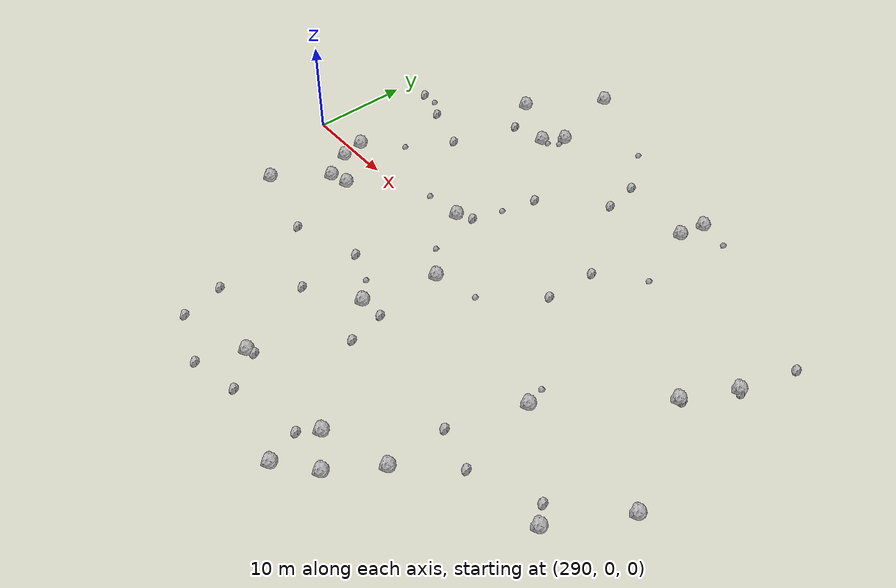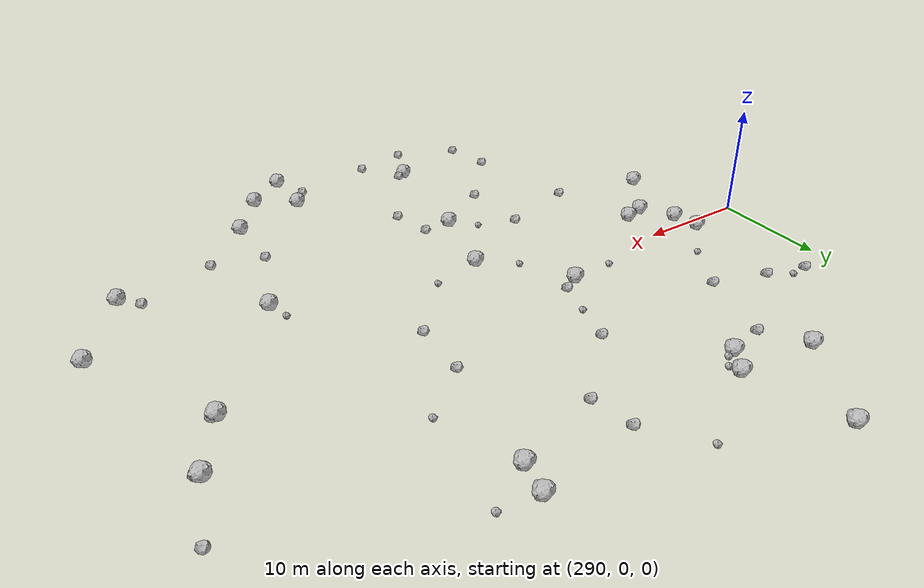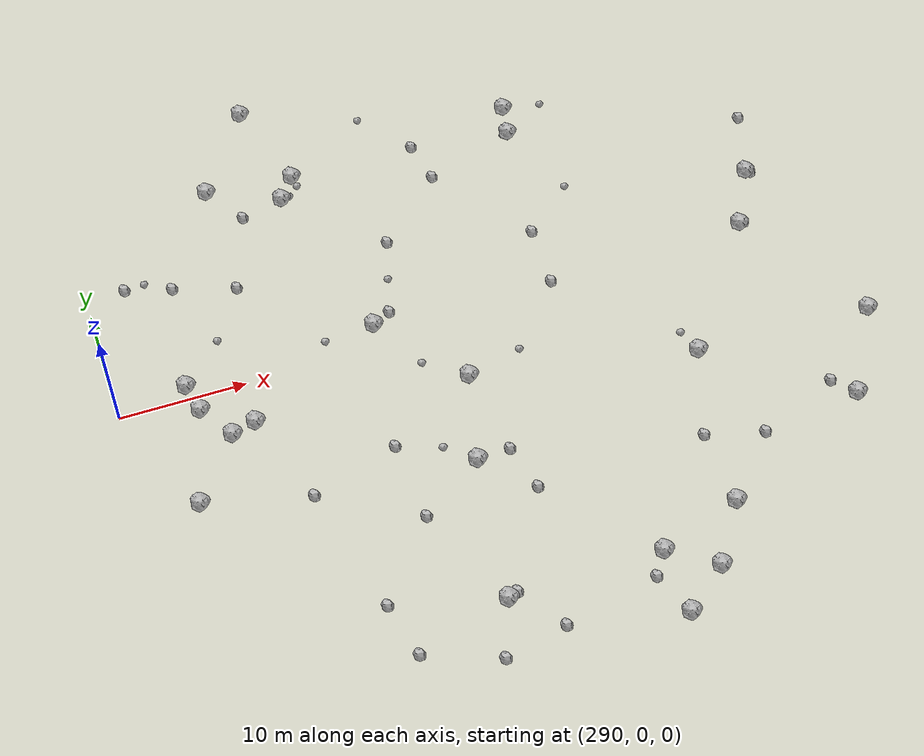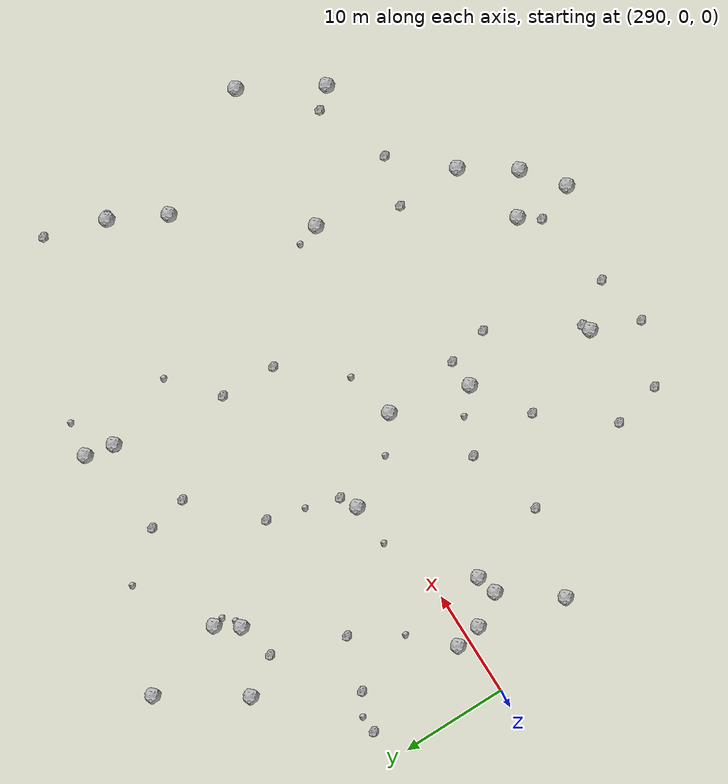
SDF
<sdf version="1.6">
 <world name="default">
  <include><uri>model://sun</uri></include>
  <model name="rock1_8_3">
   <include><uri>model://rock1</uri><pose>344.824893461898 7.069198201422985 0.5 0 0 0</pose></include>
  </model>
  <model name="rock1_8_4">
   <include><uri>model://rock1</uri><pose>325.12399207974437 -24.12594606761884 0.5 0 0 0</pose></include>
  </model>
  <model name="rock1_8_5">
   <include><uri>model://rock1</uri><pose>334.23181876366255 -8.46443714312366 0.5 0 0 0</pose></include>
  </model>
  <model name="rock1_8_6">
   <include><uri>model://rock1</uri><pose>314.7374962704645 -12.39581654854149 0.5 0 0 0</pose></include>
  </model>
  <model name="rock1_8_7">
   <include><uri>model://rock1</uri><pose>306.57558633321287 26.573353420612364 0.5 0 0 0</pose></include>
  </model>
  <model name="rock1_8_8">
   <include><uri>model://rock1</uri><pose>313.1013871168274 -24.176035505605107 0.5 0 0 0</pose></include>
  </model>
  <model name="rock1_8_9">
   <include><uri>model://rock1</uri><pose>328.6444741793281 -26.56443660269138 0.5 0 0 0</pose></include>
  </model>
  <model name="rock1_8_10">
   <include><uri>model://rock1</uri><pose>331.7696420653438 -21.929557478354475 0.5 0 0 0</pose></include>
  </model>
  <model name="rock1_8_11">
   <include><uri>model://rock1</uri><pose>308.8839611769466 18.57332986783789 0.5 0 0 0</pose></include>
  </model>
  <model name="rock1_8_12">
   <include><uri>model://rock1</uri><pose>348.4807972634605 -9.005449514394048 0.5 0 0 0</pose></include>
  </model>
  <model name="rock1_8_13">
   <include><uri>model://rock1</uri><pose>325.13702968046505 -29.37857251705013 0.5 0 0 0</pose></include>
  </model>
  <model name="rock1_8_14">
   <include><uri>model://rock1</uri><pose>344.33520413889204 -16.048808141991838 0.5 0 0 0</pose></include>
  </model>
  <model name="rock1_8_15">
   <include><uri>model://rock1</uri><pose>295.5623393105361 1.05933836301244 0.5 0 0 0</pose></include>
  </model>
  <model name="rock1_8_16">
   <include><uri>model://rock1</uri><pose>296.068867558225 -1.4004916899622657 0.5 0 0 0</pose></include>
  </model>
  <model name="rock1_8_17">
   <include><uri>model://rock1</uri><pose>294.05169368258544 -9.424348664870617 0.5 0 0 0</pose></include>
  </model>
  <model name="rock1_8_18">
   <include><uri>model://rock1</uri><pose>327.99159837196333 20.095762595663857 0.5 0 0 0</pose></include>
  </model>
  <model name="rock1_8_19">
   <include><uri>model://rock1</uri><pose>316.5397966672551 -4.977524992329833 0.5 0 0 0</pose></include>
  </model>
  <model name="rock1_8_20">
   <include><uri>model://rock1</uri><pose>310.95752874462096 1.9897396438721557 0.5 0 0 0</pose></include>
  </model>
  <model name="rock1_8_21">
   <include><uri>model://rock1</uri><pose>327.44913745312533 17.398259164310907 0.5 0 0 0</pose></include>
  </model>
  <model name="rock1_8_22">
   <include><uri>model://rock1</uri><pose>299.79869473420615 -3.7799187400182 0.5 0 0 0</pose></include>
  </model>
  <model name="rock1_8_23">
   <include><uri>model://rock1</uri><pose>307.4705344463062 16.554906494883838 0.5 0 0 0</pose></include>
  </model>
  <model name="rock1_8_24">
   <include><uri>model://rock1</uri><pose>342.1911897707543 2.1212596515750803 0.5 0 0 0</pose></include>
  </model>
  <model name="rock1_8_25">
   <include><uri>model://rock1</uri><pose>297.8619320465754 -4.3272913746461334 0.5 0 0 0</pose></include>
  </model>
  <model name="rock1_8_26">
   <include><uri>model://rock1</uri><pose>301.75130979846455 19.191965479327692 0.5 0 0 0</pose></include>
  </model>
  <model name="rock2_8_0">
   <include><uri>model://rock2</uri><pose>304.63420613560913 -21.92140317154029 0.3 0 0 0</pose></include>
  </model>
  <model name="rock2_8_1">
   <include><uri>model://rock2</uri><pose>316.27785905097693 -27.492134087189314 0.3 0 0 0</pose></include>
  </model>
  <model name="rock2_8_2">
   <include><uri>model://rock2</uri><pose>345.15625355151485 6.917075134300497 0.3 0 0 0</pose></include>
  </model>
  <model name="rock2_8_3">
   <include><uri>model://rock2</uri><pose>325.5988056458718 1.5990770480545997 0.3 0 0 0</pose></include>
  </model>
  <model name="rock2_8_4">
   <include><uri>model://rock2</uri><pose>319.2369640500019 18.561715843663585 0.3 0 0 0</pose></include>
  </model>
  <model name="rock2_8_5">
   <include><uri>model://rock2</uri><pose>309.54826349882217 -15.794081886718331 0.3 0 0 0</pose></include>
  </model>
  <model name="rock2_8_6">
   <include><uri>model://rock2</uri><pose>331.65313104598147 -15.80603280794647 0.3 0 0 0</pose></include>
  </model>
  <model name="rock2_8_7">
   <include><uri>model://rock2</uri><pose>323.7960578992181 -25.910407032684642 0.3 0 0 0</pose></include>
  </model>
  <model name="rock2_8_8">
   <include><uri>model://rock2</uri><pose>313.8331267644729 -23.836074974181024 0.3 0 0 0</pose></include>
  </model>
  <model name="rock2_8_9">
   <include><uri>model://rock2</uri><pose>301.6218819819458 9.017901209201021 0.3 0 0 0</pose></include>
  </model>
  <model name="rock2_8_10">
   <include><uri>model://rock2</uri><pose>293.0774371145839 11.632433933161721 0.3 0 0 0</pose></include>
  </model>
  <model name="rock2_8_11">
   <include><uri>model://rock2</uri><pose>342.8047265839795 -14.32484611708395 0.3 0 0 0</pose></include>
  </model>
  <model name="rock2_8_12">
   <include><uri>model://rock2</uri><pose>309.16648918409226 -9.25914966343559 0.3 0 0 0</pose></include>
  </model>
  <model name="rock2_8_13">
   <include><uri>model://rock2</uri><pose>342.52929712758186 2.20089534004439 0.3 0 0 0</pose></include>
  </model>
  <model name="rock2_8_14">
   <include><uri>model://rock2</uri><pose>325.82629080641794 6.830946081181629 0.3 0 0 0</pose></include>
  </model>
  <model name="rock2_8_15">
   <include><uri>model://rock2</uri><pose>336.18438903794 -17.03681250594054 0.3 0 0 0</pose></include>
  </model>
  <model name="rock2_8_16">
   <include><uri>model://rock2</uri><pose>312.43652396861745 2.8641305635124894 0.3 0 0 0</pose></include>
  </model>
  <model name="rock2_8_17">
   <include><uri>model://rock2</uri><pose>346.5280796376016 12.73366748934746 0.3 0 0 0</pose></include>
  </model>
  <model name="rock2_8_18">
   <include><uri>model://rock2</uri><pose>302.19564647655494 -11.439802751387862 0.3 0 0 0</pose></include>
  </model>
  <model name="rock2_8_19">
   <include><uri>model://rock2</uri><pose>319.90110854343084 14.92020999664566 0.3 0 0 0</pose></include>
  </model>
  <model name="rock2_8_20">
   <include><uri>model://rock2</uri><pose>318.1917148419377 -16.04200194097885 0.3 0 0 0</pose></include>
  </model>
  <model name="rock2_8_21">
   <include><uri>model://rock2</uri><pose>296.7101702148146 10.552518341580644 0.3 0 0 0</pose></include>
  </model>
  <model name="rock2_8_22">
   <include><uri>model://rock2</uri><pose>303.9015497188465 15.768921246410777 0.3 0 0 0</pose></include>
  </model>
  <model name="rock2_8_23">
   <include><uri>model://rock2</uri><pose>317.31844325853837 -12.22830493796896 0.3 0 0 0</pose></include>
  </model>
  <model name="rock2_8_24">
   <include><uri>model://rock2</uri><pose>305.6324970967226 -26.33444091052376 0.3 0 0 0</pose></include>
  </model>
  <model name="rock2_8_25">
   <include><uri>model://rock2</uri><pose>311.31564346095206 -28.55229869685687 0.3 0 0 0</pose></include>
  </model>
  <model name="rock2_8_26">
   <include><uri>model://rock2</uri><pose>314.32173675740705 9.539860437689306 0.3 0 0 0</pose></include>
  </model>
  <model name="rock3_8_0">
   <include><uri>model://rock3</uri><pose>313.4126904531608 -2.6155006943488317 0.2 0 0 0</pose></include>
  </model>
  <model name="rock3_8_1">
   <include><uri>model://rock3</uri><pose>329.9954970715163 10.452470527800301 0.2 0 0 0</pose></include>
  </model>
  <model name="rock3_8_2">
   <include><uri>model://rock3</uri><pose>331.10226686443576 19.645191310154082 0.2 0 0 0</pose></include>
  </model>
  <model name="rock3_8_3">
   <include><uri>model://rock3</uri><pose>313.319426124003 5.993569191506694 0.2 0 0 0</pose></include>
  </model>
  <model name="rock3_8_4">
   <include><uri>model://rock3</uri><pose>309.0138545957608 17.605394283219752 0.2 0 0 0</pose></include>
  </model>
  <model name="rock3_8_5">
   <include><uri>model://rock3</uri><pose>306.8612670677139 1.7215385383302326 0.2 0 0 0</pose></include>
  </model>
  <model name="rock3_8_6">
   <include><uri>model://rock3</uri><pose>308.13751063904357 16.737983527204946 0.2 0 0 0</pose></include>
  </model>
  <model name="rock3_8_7">
   <include><uri>model://rock3</uri><pose>333.5541623033218 -6.392916550575084 0.2 0 0 0</pose></include>
  </model>
  <model name="rock3_8_8">
   <include><uri>model://rock3</uri><pose>326.9945435293579 17.360920042608868 0.2 0 0 0</pose></include>
  </model>
  <model name="rock3_8_9">
   <include><uri>model://rock3</uri><pose>315.81678168523655 22.852599325894012 0.2 0 0 0</pose></include>
  </model>
  <model name="rock3_8_10">
   <include><uri>model://rock3</uri><pose>298.86583840383366 4.513668343952332 0.2 0 0 0</pose></include>
  </model>
  <model name="rock3_8_11">
   <include><uri>model://rock3</uri><pose>321.02977835822895 -3.8030997942232396 0.2 0 0 0</pose></include>
  </model>
  <model name="rock3_8_12">
   <include><uri>model://rock3</uri><pose>294.6981885980043 11.729111311932463 0.2 0 0 0</pose></include>
  </model>
  <model name="rock3_8_13">
   <include><uri>model://rock3</uri><pose>312.5795246367516 -10.490148067780634 0.2 0 0 0</pose></include>
  </model>
 </world>
</sdf>
